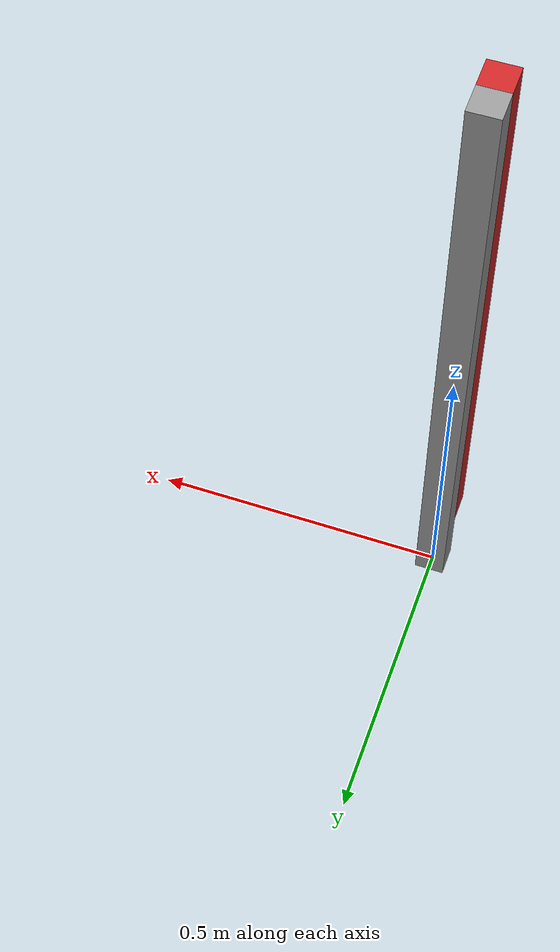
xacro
<?xml version="1.0"?>
<!-- Simple Pole -->
<robot name="simple_pole" xmlns:xacro="http://www.ros.org/wiki/xacro">

  <!-- Constants for robot dimensions -->
  <xacro:property name="PI" value="3.1415926535897931"/>
  <xacro:property name="pole_length" value="1" />
  <xacro:property name="pole_mass" value="0.5" />
  <xacro:property name="pole_width" value="0.05" />

  <!-- Import all Gazebo-customization elements, including Gazebo colors -->
  <xacro:include filename="$(find simpp_description)/urdf/simpp.gazebo" />
  <!-- Import Rviz colors -->
  <xacro:include filename="$(find simpp_description)/urdf/materials.xacro" />

  <!-- Used for fixing robot to Gazebo 'base_link' -->
  <link name="world"/>

  <joint name="fixed" type="fixed">
    <parent link="world"/>
    <child link="base_link"/>
  </joint>

  <link name='base_link'>
    <collision name='collision'>
      <origin xyz="0 0 ${1.1*pole_length/2}" rpy="0 0 0"/>
      <geometry>
        <box size="${pole_width} ${pole_width} ${1.1*pole_length}" />
      </geometry>
    </collision>

    <visual name='visual'>
      <origin xyz="0 0 ${1.1*pole_length/2}" rpy="0 0 0"/>
      <geometry>
        <box size="${pole_width} ${pole_width} ${1.1*pole_length}" />
      </geometry>
    </visual>

    <inertial name='inertial'>
      <origin xyz="0 0 ${1.1*pole_length/2}" rpy="0 0 0"/>
      <mass value="${1.1*pole_mass}" />
      <inertia ixx="${1/12*1.1*pole_mass*(1.1*pole_length*1.1*pole_length+pole_width*pole_width)}" ixy="0" ixz="0"
          iyy="${1/12*1.1*pole_mass*(1.1*pole_length*1.1*pole_length+pole_width*pole_width)}" iyz="0"
          izz="${1/6*1.1*pole_mass*pole_width*pole_width}" />
    </inertial>
  </link>

  <link name='pole'>
    <collision name='collision'>
      <origin xyz="0 0 ${-pole_length/2}" rpy="0 0 0"/>
      <geometry>
        <box size="${pole_width} ${pole_width} ${pole_length}" />
      </geometry>
    </collision>

    <visual name='visual'>
      <origin xyz="0 0 ${-pole_length/2}" rpy="0 0 0"/>
      <geometry>
        <box size="${pole_width} ${pole_width} ${pole_length}" />
      </geometry>
    </visual>

    <inertial name='inertial'>
      <origin xyz="0 0 ${-pole_length/2}" rpy="0 0 0"/>
      <mass value="${pole_mass}" />
      <inertia ixx="${1/12*pole_mass*(pole_length*pole_length+pole_width*pole_width)}" ixy="0" ixz="0"
          iyy="${1/12*pole_mass*(pole_length*pole_length+pole_width*pole_width)}" iyz="0"
          izz="${1/6*pole_mass*pole_width*pole_width}" />
    </inertial>
  </link>

  <!-- Joints -->
  <joint name="pole_axis" type="revolute">
    <origin xyz="0 ${-pole_width} ${1.1*pole_length}" rpy="0 0 0"/>
    <axis xyz="0 1 0"/>
    <parent link="base_link"/>
    <child link="pole"/>
    <dynamics damping="0.1" friction="0.0"/>
    <limit effort="2000" lower="-157" upper="157" velocity="12"/>
    <safety_controller k_position="100" k_velocity="10" soft_lower_limit="-156" soft_upper_limit="156"/>
  </joint>

  <transmission name="axis_tran">
    <type>transmission_interface/SimpleTransmission</type>
    <joint name="pole_axis"/>
    <actuator name="pole_motor">
      <hardwareInterface>EffortJointInterface</hardwareInterface>
      <mechanicalReduction>1</mechanicalReduction>
    </actuator>
  </transmission>

</robot>
